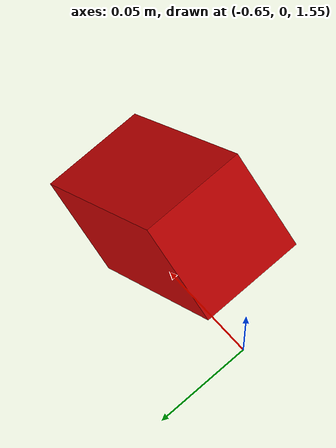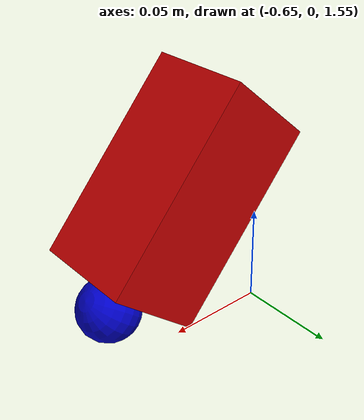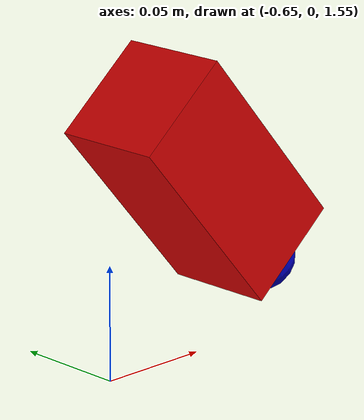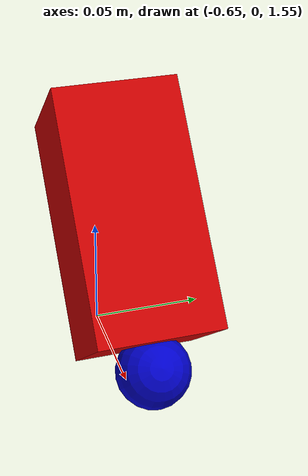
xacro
<?xml version="1.0"?>
<robot name="simple_camera" xmlns:xacro="http://www.ros.org/wiki/xacro">
  <link name="world"/>

  <joint type="fixed" name="camera_joint">
    <origin xyz="-0.6 0 1.63" rpy="0 0.86 0"/>
    <child link="camera_link"/>
    <parent link="world"/>
  </joint>

  <link name='camera_link'>
    <pose>0 0 0 0 0 0</pose>
    <inertial>
      <mass value="1.0e-03"/>
      <origin xyz="0 0 0" rpy="0 0 0"/>
      <inertia
          ixx="1e-6" ixy="0" ixz="0"
          iyy="1e-6" iyz="0"
          izz="1e-6"
      />
    </inertial>

    <visual name="camera_body_visual">
      <origin xyz="0 0 0" rpy="0 0 0"/>
      <geometry>
        <box size=".1 .05 .05"/>
      </geometry>
      <material name = "red">
        <color rgba="0.8 0.0 0.0 1.0"/>
      </material>
    </visual>
    <visual name="camera_lens_visual">
      <origin xyz="0.06 0 0" rpy="0 0 0"/>
      <geometry>
        <sphere radius="0.015"/>
      </geometry>
      <material name = "blue">
        <color rgba="0 0.0 0.8 1.0"/>
      </material>
    </visual>
  </link>

  <gazebo reference="camera_link">
    <sensor name="camera" type="camera">
      <camera>
        <horizontal_fov>1.047</horizontal_fov>
        <image>
          <width>1280</width>
          <height>720</height>
          <format>R8G8B8</format>
        </image>
        <camera_info_topic>camera/camera_info</camera_info_topic>
      </camera>
      <always_on>true</always_on>
      <update_rate>30</update_rate>
      <visualize>true</visualize>
      <topic>camera/image</topic>
    </sensor>
  </gazebo>
</robot>
